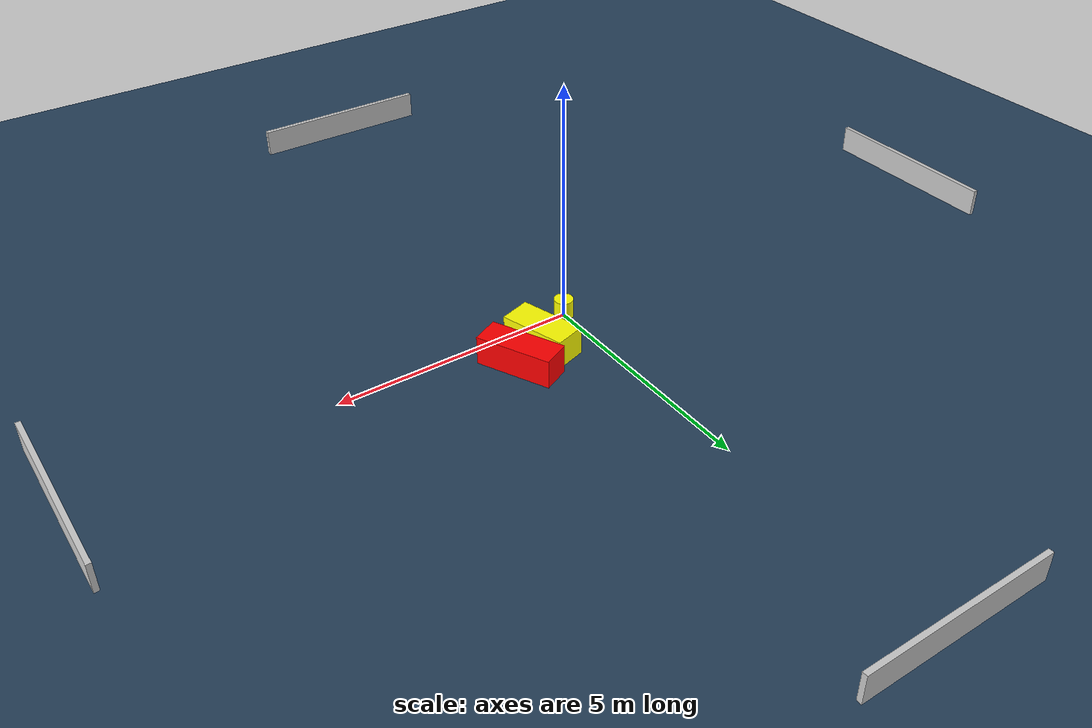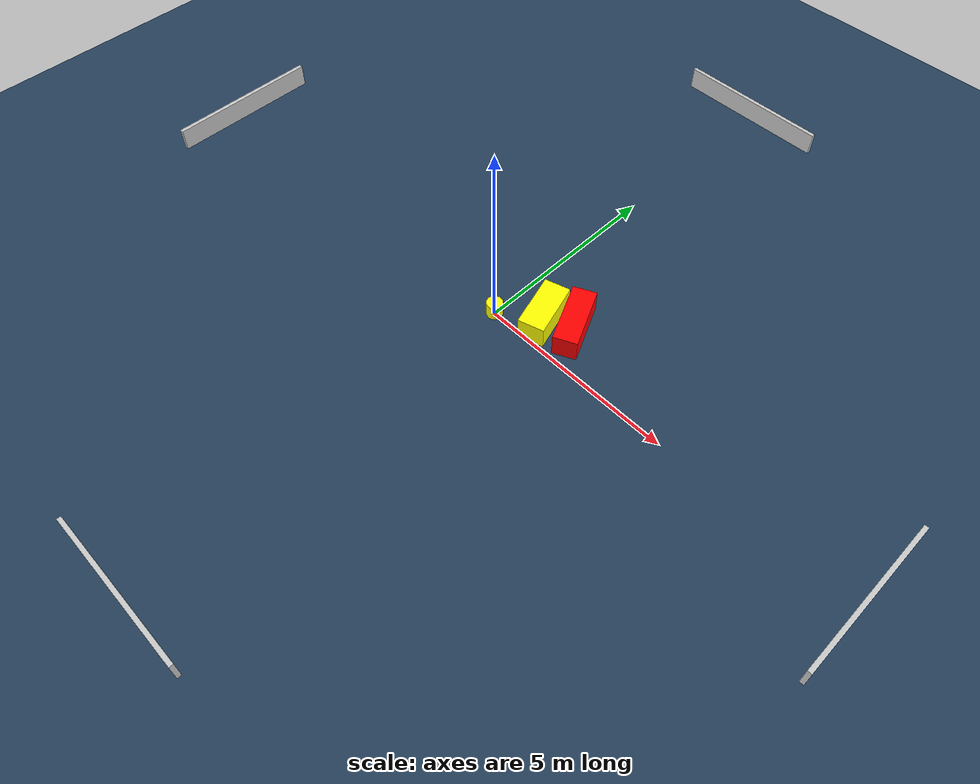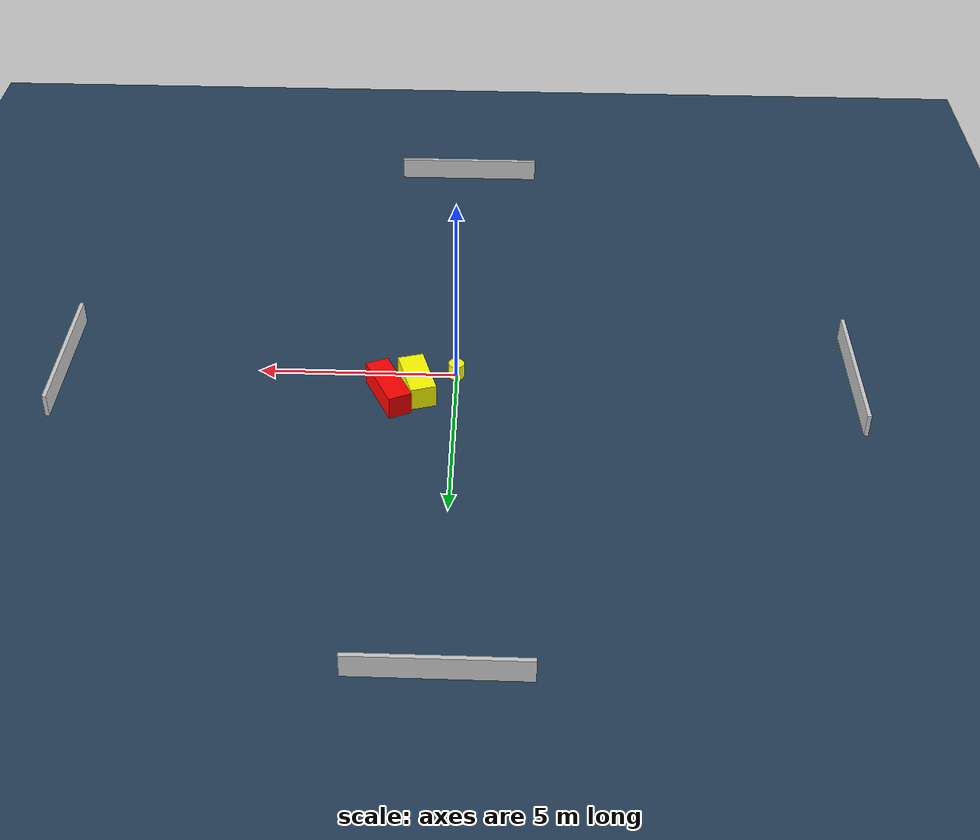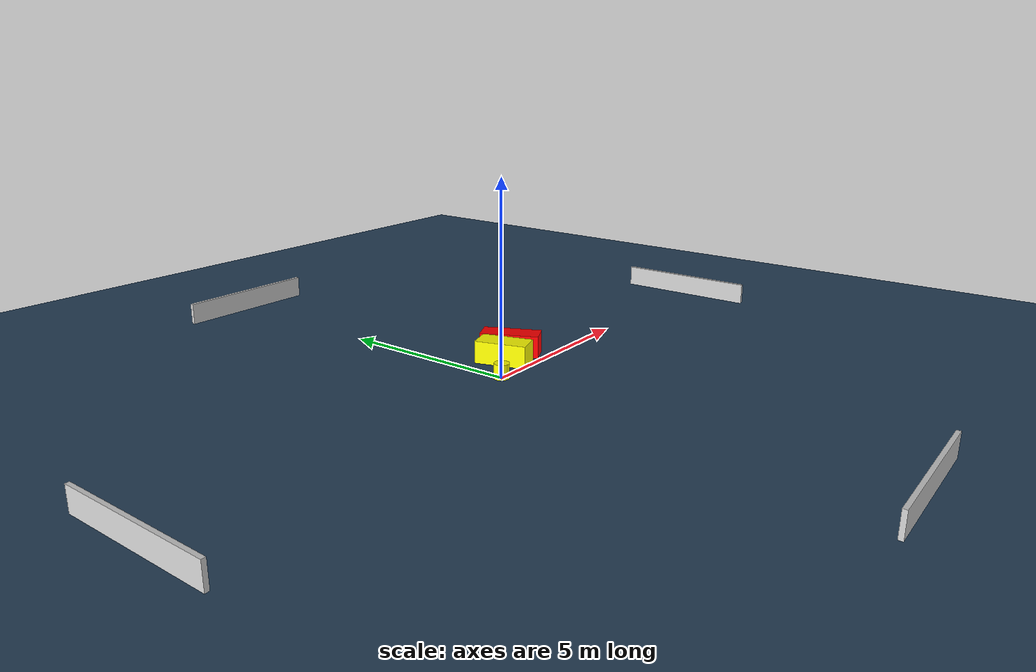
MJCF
<?xml version="1.0" ?>
<mujoco model="generated_environment">
  <option timestep="0.01" integrator="RK4" cone="elliptic"/>
  <default>
    <geom density="1"/>
  </default>
  <asset>
    <texture builtin="gradient" height="3072" name="skybox" rgb1="0.3 0.5 0.7" rgb2="0 0 0" type="skybox" width="512"/>
    <texture builtin="checker" height="300" name="groundplane" rgb1="0.2 0.3 0.4" rgb2="0.1 0.2 0.3" type="2d" width="300"/>
    <material name="groundplane" reflectance="0.2" texrepeat="5 5" texture="groundplane"/>
  </asset>
  <worldbody>
    <light dir="0 0 -1" directional="true" pos="0 0 1.5"/>
    <geom condim="3" friction="0.5 0.005 0.001" material="groundplane" name="floor" pos="0 0 0" size="0 0 0.05" type="plane"/>
    <body name="walls">
      <geom name="wall_1" condim="4" pos="-10.0 0.0 0.3" rgba="0.800000011920929 0.800000011920929 0.800000011920929 1.0" size="0.05 2.0 0.3" type="box"/>
      <geom name="wall_2" condim="4" pos="10.0 0.0 0.3" rgba="0.800000011920929 0.800000011920929 0.800000011920929 1.0" size="0.05 2.0 0.3" type="box"/>
      <geom name="wall_3" condim="4" pos="0.0 -10.0 0.3" rgba="0.800000011920929 0.800000011920929 0.800000011920929 1.0" size="2.0 0.05 0.3" type="box"/>
      <geom name="wall_4" condim="4" pos="0.0 10.0 0.3" rgba="0.800000011920929 0.800000011920929 0.800000011920929 1.0" size="2.0 0.05 0.3" type="box"/>
    </body>
    <body name="robot">
      <joint name="joint_x" type="slide" pos="0 0 0" axis="1 0 0"/>
      <joint name="joint_y" type="slide" pos="0 0 0" axis="0 1 0"/>
      <geom name="robot" type="cylinder" pos="0.0 0.0 0.2" size="0.2 0.2 0.0" mass="5.0" friction="1.0 0.005 0.0001" condim="4" rgba="1.0 1.0 0.0 1.0"/>
    </body>
    <body name="obstacle_1_movable">
      <geom name="obstacle_1_movable" condim="4" pos="0.9612662978913298 0.6632926790380588 0.3" euler="0 0 106.92358731530778" friction="0.0 0.005 0.001" rgba="1.0 1.0 0.0 1.0" size="0.6935802955951335 0.32699687080004314 0.3" type="box" mass="0.1"/>
      <joint type="free"/>
    </body>
    <body name="obstacle_2_static">
      <geom name="obstacle_2_static" condim="4" pos="1.654606303909333 0.9554074597902619 0.3" euler="0 0 115.61316710180824" friction="0.0 0.005 0.001" rgba="1.0 0.0 0.0 1.0" size="0.7878538993859516 0.2971402951883879 0.3" type="box"/>
    </body>
  </worldbody>
  <actuator>
    <motor name="actuator_x" joint="joint_x" gear="1" ctrlrange="-1 1"/>
    <motor name="actuator_y" joint="joint_y" gear="1" ctrlrange="-1 1"/>
  </actuator>
</mujoco>
